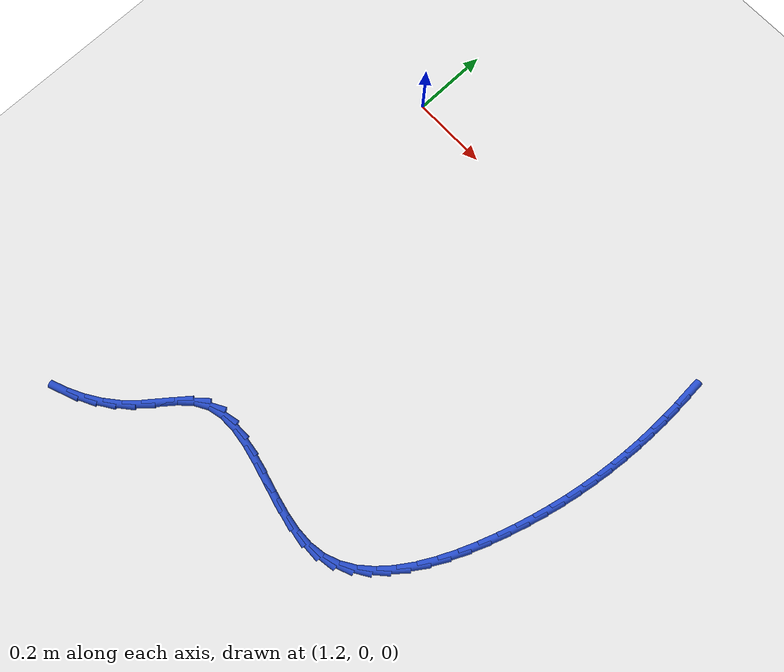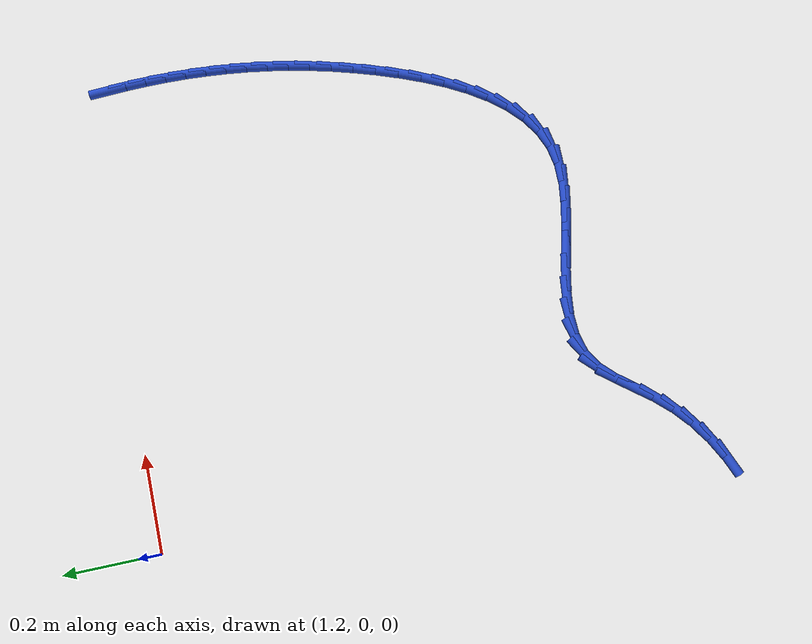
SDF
<sdf version="1.6">
 <world name="default">
  <model name="ground_plane">
   <static>1</static>
   <link name="link">
    <collision name="collision">
     <geometry><plane><normal>0 0 1</normal><size>100 100</size></plane></geometry>
     <surface><friction><ode><mu>100</mu><mu2>50</mu2></ode></friction></surface>
    </collision>
    <visual name="visual">
     <cast_shadows>0</cast_shadows>
     <geometry><plane><normal>0 0 1</normal><size>100 100</size></plane></geometry>
     <material>
      <script><uri>file://media/materials/scripts/gazebo.material</uri><name>Gazebo/WhiteGlow</name></script>
     </material>
    </visual>
   </link>
  </model>
  <model name="line">
   <link name="link_79">
    <pose>2.1831390095895657 -0.05542931454742334 0.01 0 1.57 -1.522108457162398</pose>
    <collision name="collision">
     <geometry><cylinder><radius>0.01</radius><length>0.08</length></cylinder></geometry>
    </collision>
    <visual name="visual">
     <material>
      <script><name>Gazebo/Blue</name><uri>file://media/materials/scripts/gazebo.material</uri></script>
     </material>
     <geometry><cylinder><radius>0.01</radius><length>0.08</length></cylinder></geometry>
    </visual>
   </link>
   <link name="link_80">
    <pose>2.185245318811194 -0.09865660366529191 0.01 0 1.57 -1.548702317414568</pose>
    <collision name="collision">
     <geometry><cylinder><radius>0.01</radius><length>0.08</length></cylinder></geometry>
    </collision>
    <visual name="visual">
     <material>
      <script><name>Gazebo/Blue</name><uri>file://media/materials/scripts/gazebo.material</uri></script>
     </material>
     <geometry><cylinder><radius>0.01</radius><length>0.08</length></cylinder></geometry>
    </visual>
   </link>
   <link name="link_81">
    <pose>2.1862041685043865 -0.14204816978187895 0.01 0 1.57 1.5650556510038254</pose>
    <collision name="collision">
     <geometry><cylinder><radius>0.01</radius><length>0.08</length></cylinder></geometry>
    </collision>
    <visual name="visual">
     <material>
      <script><name>Gazebo/Blue</name><uri>file://media/materials/scripts/gazebo.material</uri></script>
     </material>
     <geometry><cylinder><radius>0.01</radius><length>0.08</length></cylinder></geometry>
    </visual>
   </link>
   <link name="link_82">
    <pose>2.1859539735978686 -0.1856305226609679 0.01 0 1.57 1.5360879706356931</pose>
    <collision name="collision">
     <geometry><cylinder><radius>0.01</radius><length>0.08</length></cylinder></geometry>
    </collision>
    <visual name="visual">
     <material>
      <script><name>Gazebo/Blue</name><uri>file://media/materials/scripts/gazebo.material</uri></script>
     </material>
     <geometry><cylinder><radius>0.01</radius><length>0.08</length></cylinder></geometry>
    </visual>
   </link>
   <link name="link_83">
    <pose>2.1844331490203657 -0.22943017206633987 0.01 0 1.57 1.5061088793109934</pose>
    <collision name="collision">
     <geometry><cylinder><radius>0.01</radius><length>0.08</length></cylinder></geometry>
    </collision>
    <visual name="visual">
     <material>
      <script><name>Gazebo/Blue</name><uri>file://media/materials/scripts/gazebo.material</uri></script>
     </material>
     <geometry><cylinder><radius>0.01</radius><length>0.08</length></cylinder></geometry>
    </visual>
   </link>
   <link name="link_84">
    <pose>2.1815801097006022 -0.2734736277617782 0.01 0 1.57 1.475252470126976</pose>
    <collision name="collision">
     <geometry><cylinder><radius>0.01</radius><length>0.08</length></cylinder></geometry>
    </collision>
    <visual name="visual">
     <material>
      <script><name>Gazebo/Blue</name><uri>file://media/materials/scripts/gazebo.material</uri></script>
     </material>
     <geometry><cylinder><radius>0.01</radius><length>0.08</length></cylinder></geometry>
    </visual>
   </link>
   <link name="link_85">
    <pose>2.177333270567303 -0.3177873995110657 0.01 0 1.57 1.4436635382987018</pose>
    <collision name="collision">
     <geometry><cylinder><radius>0.01</radius><length>0.08</length></cylinder></geometry>
    </collision>
    <visual name="visual">
     <material>
      <script><name>Gazebo/Blue</name><uri>file://media/materials/scripts/gazebo.material</uri></script>
     </material>
     <geometry><cylinder><radius>0.01</radius><length>0.08</length></cylinder></geometry>
    </visual>
   </link>
   <link name="link_86">
    <pose>2.1716310465491953 -0.3623979970779849 0.01 0 1.57 1.4114952562025849</pose>
    <collision name="collision">
     <geometry><cylinder><radius>0.01</radius><length>0.08</length></cylinder></geometry>
    </collision>
    <visual name="visual">
     <material>
      <script><name>Gazebo/Blue</name><uri>file://media/materials/scripts/gazebo.material</uri></script>
     </material>
     <geometry><cylinder><radius>0.01</radius><length>0.08</length></cylinder></geometry>
    </visual>
   </link>
   <link name="link_87">
    <pose>2.1644118525750016 -0.4073319302263194 0.01 0 1.57 1.378906416513654</pose>
    <collision name="collision">
     <geometry><cylinder><radius>0.01</radius><length>0.08</length></cylinder></geometry>
    </collision>
    <visual name="visual">
     <material>
      <script><name>Gazebo/Blue</name><uri>file://media/materials/scripts/gazebo.material</uri></script>
     </material>
     <geometry><cylinder><radius>0.01</radius><length>0.08</length></cylinder></geometry>
    </visual>
   </link>
   <link name="link_88">
    <pose>2.155614103573448 -0.4526157087198502 0.01 0 1.57 1.346058368728842</pose>
    <collision name="collision">
     <geometry><cylinder><radius>0.01</radius><length>0.08</length></cylinder></geometry>
    </collision>
    <visual name="visual">
     <material>
      <script><name>Gazebo/Blue</name><uri>file://media/materials/scripts/gazebo.material</uri></script>
     </material>
     <geometry><cylinder><radius>0.01</radius><length>0.08</length></cylinder></geometry>
    </visual>
   </link>
   <link name="link_89">
    <pose>2.1451762144732602 -0.49827584232236066 0.01 0 1.57 1.3131118034793567</pose>
    <collision name="collision">
     <geometry><cylinder><radius>0.01</radius><length>0.08</length></cylinder></geometry>
    </collision>
    <visual name="visual">
     <material>
      <script><name>Gazebo/Blue</name><uri>file://media/materials/scripts/gazebo.material</uri></script>
     </material>
     <geometry><cylinder><radius>0.01</radius><length>0.08</length></cylinder></geometry>
    </visual>
   </link>
   <link name="link_90">
    <pose>2.1330366002031633 -0.544338840797634 0.01 0 1.57 1.280223553973466</pose>
    <collision name="collision">
     <geometry><cylinder><radius>0.01</radius><length>0.08</length></cylinder></geometry>
    </collision>
    <visual name="visual">
     <material>
      <script><name>Gazebo/Blue</name><uri>file://media/materials/scripts/gazebo.material</uri></script>
     </material>
     <geometry><cylinder><radius>0.01</radius><length>0.08</length></cylinder></geometry>
    </visual>
   </link>
   <link name="link_91">
    <pose>2.1191336756918817 -0.5908312139094518 0.01 0 1.57 1.2475370838448927</pose>
    <collision name="collision">
     <geometry><cylinder><radius>0.01</radius><length>0.08</length></cylinder></geometry>
    </collision>
    <visual name="visual">
     <material>
      <script><name>Gazebo/Blue</name><uri>file://media/materials/scripts/gazebo.material</uri></script>
     </material>
     <geometry><cylinder><radius>0.01</radius><length>0.08</length></cylinder></geometry>
    </visual>
   </link>
   <link name="link_92">
    <pose>2.1034057875598466 -0.6377786624070697 0.01 0 1.57 1.2129818637923762</pose>
    <collision name="collision">
     <geometry><cylinder><radius>0.01</radius><length>0.08</length></cylinder></geometry>
    </collision>
    <visual name="visual">
     <material>
      <script><name>Gazebo/Blue</name><uri>file://media/materials/scripts/gazebo.material</uri></script>
     </material>
     <geometry><cylinder><radius>0.01</radius><length>0.08</length></cylinder></geometry>
    </visual>
   </link>
   <link name="link_93">
    <pose>2.0857692928396125 -0.6849464516683501 0.01 0 1.57 1.170552706758883</pose>
    <collision name="collision">
     <geometry><cylinder><radius>0.01</radius><length>0.08</length></cylinder></geometry>
    </collision>
    <visual name="visual">
     <material>
      <script><name>Gazebo/Blue</name><uri>file://media/materials/scripts/gazebo.material</uri></script>
     </material>
     <geometry><cylinder><radius>0.01</radius><length>0.08</length></cylinder></geometry>
    </visual>
   </link>
   <link name="link_94">
    <pose>2.06608715555971 -0.7314674829308456 0.01 0 1.57 1.117600772588768</pose>
    <collision name="collision">
     <geometry><cylinder><radius>0.01</radius><length>0.08</length></cylinder></geometry>
    </collision>
    <visual name="visual">
     <material>
      <script><name>Gazebo/Blue</name><uri>file://media/materials/scripts/gazebo.material</uri></script>
     </material>
     <geometry><cylinder><radius>0.01</radius><length>0.08</length></cylinder></geometry>
    </visual>
   </link>
   <link name="link_95">
    <pose>2.044214392546623 -0.7763805341348176 0.01 0 1.57 1.0514386191112939</pose>
    <collision name="collision">
     <geometry><cylinder><radius>0.01</radius><length>0.08</length></cylinder></geometry>
    </collision>
    <visual name="visual">
     <material>
      <script><name>Gazebo/Blue</name><uri>file://media/materials/scripts/gazebo.material</uri></script>
     </material>
     <geometry><cylinder><radius>0.01</radius><length>0.08</length></cylinder></geometry>
    </visual>
   </link>
   <link name="link_96">
    <pose>2.0200060206268327 -0.8187243832205269 0.01 0 1.57 0.9684261569537993</pose>
    <collision name="collision">
     <geometry><cylinder><radius>0.01</radius><length>0.08</length></cylinder></geometry>
    </collision>
    <visual name="visual">
     <material>
      <script><name>Gazebo/Blue</name><uri>file://media/materials/scripts/gazebo.material</uri></script>
     </material>
     <geometry><cylinder><radius>0.01</radius><length>0.08</length></cylinder></geometry>
    </visual>
   </link>
   <link name="link_97">
    <pose>1.9933170566268237 -0.8575378081282331 0.01 0 1.57 0.8639216215624128</pose>
    <collision name="collision">
     <geometry><cylinder><radius>0.01</radius><length>0.08</length></cylinder></geometry>
    </collision>
    <visual name="visual">
     <material>
      <script><name>Gazebo/Blue</name><uri>file://media/materials/scripts/gazebo.material</uri></script>
     </material>
     <geometry><cylinder><radius>0.01</radius><length>0.08</length></cylinder></geometry>
    </visual>
   </link>
   <link name="link_98">
    <pose>1.964002517373077 -0.8918595867981972 0.01 0 1.57 0.7326828834025325</pose>
    <collision name="collision">
     <geometry><cylinder><radius>0.01</radius><length>0.08</length></cylinder></geometry>
    </collision>
    <visual name="visual">
     <material>
      <script><name>Gazebo/Blue</name><uri>file://media/materials/scripts/gazebo.material</uri></script>
     </material>
     <geometry><cylinder><radius>0.01</radius><length>0.08</length></cylinder></geometry>
    </visual>
   </link>
   <link name="link_99">
    <pose>1.9319174196920756 -0.9207284971706798 0.01 0 1.57 0.5704152561774094</pose>
    <collision name="collision">
     <geometry><cylinder><radius>0.01</radius><length>0.08</length></cylinder></geometry>
    </collision>
    <visual name="visual">
     <material>
      <script><name>Gazebo/Blue</name><uri>file://media/materials/scripts/gazebo.material</uri></script>
     </material>
     <geometry><cylinder><radius>0.01</radius><length>0.08</length></cylinder></geometry>
    </visual>
   </link>
   <link name="link_100">
    <pose>1.8969167804103035 -0.9431833171859423 0.01 0 1.57 0.37721883464383194</pose>
    <collision name="collision">
     <geometry><cylinder><radius>0.01</radius><length>0.08</length></cylinder></geometry>
    </collision>
    <visual name="visual">
     <material>
      <script><name>Gazebo/Blue</name><uri>file://media/materials/scripts/gazebo.material</uri></script>
     </material>
     <geometry><cylinder><radius>0.01</radius><length>0.08</length></cylinder></geometry>
    </visual>
   </link>
   <link name="link_101">
    <pose>1.8588556163542411 -0.9582628247842448 0.01 0 1.57 0.16350601883927826</pose>
    <collision name="collision">
     <geometry><cylinder><radius>0.01</radius><length>0.08</length></cylinder></geometry>
    </collision>
    <visual name="visual">
     <material>
      <script><name>Gazebo/Blue</name><uri>file://media/materials/scripts/gazebo.material</uri></script>
     </material>
     <geometry><cylinder><radius>0.01</radius><length>0.08</length></cylinder></geometry>
    </visual>
   </link>
   <link name="link_102">
    <pose>1.817608700162266 -0.9650676931404742 0.01 0 1.57 -0.021363014933664774</pose>
    <collision name="collision">
     <geometry><cylinder><radius>0.01</radius><length>0.08</length></cylinder></geometry>
    </collision>
    <visual name="visual">
     <material>
      <script><name>Gazebo/Blue</name><uri>file://media/materials/scripts/gazebo.material</uri></script>
     </material>
     <geometry><cylinder><radius>0.01</radius><length>0.08</length></cylinder></geometry>
    </visual>
   </link>
   <link name="link_103">
    <pose>1.7735062101038142 -0.9641253876330866 0.01 0 1.57 -0.1448132822679588</pose>
    <collision name="collision">
     <geometry><cylinder><radius>0.01</radius><length>0.08</length></cylinder></geometry>
    </collision>
    <visual name="visual">
     <material>
      <script><name>Gazebo/Blue</name><uri>file://media/materials/scripts/gazebo.material</uri></script>
     </material>
     <geometry><cylinder><radius>0.01</radius><length>0.08</length></cylinder></geometry>
    </visual>
   </link>
   <link name="link_104">
    <pose>1.72733429855814 -0.9573919468960054 0.01 0 1.57 -0.21796783411426693</pose>
    <collision name="collision">
     <geometry><cylinder><radius>0.01</radius><length>0.08</length></cylinder></geometry>
    </collision>
    <visual name="visual">
     <material>
      <script><name>Gazebo/Blue</name><uri>file://media/materials/scripts/gazebo.material</uri></script>
     </material>
     <geometry><cylinder><radius>0.01</radius><length>0.08</length></cylinder></geometry>
    </visual>
   </link>
   <link name="link_105">
    <pose>1.679898987412201 -0.946885661008335 0.01 0 1.57 -0.2506238269508344</pose>
    <collision name="collision">
     <geometry><cylinder><radius>0.01</radius><length>0.08</length></cylinder></geometry>
    </collision>
    <visual name="visual">
     <material>
      <script><name>Gazebo/Blue</name><uri>file://media/materials/scripts/gazebo.material</uri></script>
     </material>
     <geometry><cylinder><radius>0.01</radius><length>0.08</length></cylinder></geometry>
    </visual>
   </link>
   <link name="link_106">
    <pose>1.632006298552954 -0.9346248200491802 0.01 0 1.57 -0.24717667067063573</pose>
    <collision name="collision">
     <geometry><cylinder><radius>0.01</radius><length>0.08</length></cylinder></geometry>
    </collision>
    <visual name="visual">
     <material>
      <script><name>Gazebo/Blue</name><uri>file://media/materials/scripts/gazebo.material</uri></script>
     </material>
     <geometry><cylinder><radius>0.01</radius><length>0.08</length></cylinder></geometry>
    </visual>
   </link>
   <link name="link_107">
    <pose>1.5844622538673576 -0.9226277140976461 0.01 0 1.57 -0.20644111236674065</pose>
    <collision name="collision">
     <geometry><cylinder><radius>0.01</radius><length>0.08</length></cylinder></geometry>
    </collision>
    <visual name="visual">
     <material>
      <script><name>Gazebo/Blue</name><uri>file://media/materials/scripts/gazebo.material</uri></script>
     </material>
     <geometry><cylinder><radius>0.01</radius><length>0.08</length></cylinder></geometry>
    </visual>
   </link>
   <link name="link_108">
    <pose>1.5380728752423678 -0.9129126332328367 0.01 0 1.57 -0.12127731919907314</pose>
    <collision name="collision">
     <geometry><cylinder><radius>0.01</radius><length>0.08</length></cylinder></geometry>
    </collision>
    <visual name="visual">
     <material>
      <script><name>Gazebo/Blue</name><uri>file://media/materials/scripts/gazebo.material</uri></script>
     </material>
     <geometry><cylinder><radius>0.01</radius><length>0.08</length></cylinder></geometry>
    </visual>
   </link>
   <link name="link_109">
    <pose>1.4936441845649422 -0.9074978675338569 0.01 0 1.57 0.021691186275282555</pose>
    <collision name="collision">
     <geometry><cylinder><radius>0.01</radius><length>0.08</length></cylinder></geometry>
    </collision>
    <visual name="visual">
     <material>
      <script><name>Gazebo/Blue</name><uri>file://media/materials/scripts/gazebo.material</uri></script>
     </material>
     <geometry><cylinder><radius>0.01</radius><length>0.08</length></cylinder></geometry>
    </visual>
   </link>
   <link name="link_110">
    <pose>1.4519822037220376 -0.9084017070798113 0.01 0 1.57 0.2380089402579176</pose>
    <collision name="collision">
     <geometry><cylinder><radius>0.01</radius><length>0.08</length></cylinder></geometry>
    </collision>
    <visual name="visual">
     <material>
      <script><name>Gazebo/Blue</name><uri>file://media/materials/scripts/gazebo.material</uri></script>
     </material>
     <geometry><cylinder><radius>0.01</radius><length>0.08</length></cylinder></geometry>
    </visual>
   </link>
   <link name="link_111">
    <pose>1.4138929546006105 -0.9176424419498046 0.01 0 1.57 0.5253308922557078</pose>
    <collision name="collision">
     <geometry><cylinder><radius>0.01</radius><length>0.08</length></cylinder></geometry>
    </collision>
    <visual name="visual">
     <material>
      <script><name>Gazebo/Blue</name><uri>file://media/materials/scripts/gazebo.material</uri></script>
     </material>
     <geometry><cylinder><radius>0.01</radius><length>0.08</length></cylinder></geometry>
    </visual>
   </link>
   <link name="link_112">
    <pose>1.38016074640839 -0.9371957236527205 0.01 0 1.57 0.7788881776675004</pose>
    <collision name="collision">
     <geometry><cylinder><radius>0.01</radius><length>0.08</length></cylinder></geometry>
    </collision>
    <visual name="visual">
     <material>
      <script><name>Gazebo/Blue</name><uri>file://media/materials/scripts/gazebo.material</uri></script>
     </material>
     <geometry><cylinder><radius>0.01</radius><length>0.08</length></cylinder></geometry>
    </visual>
   </link>
   <link name="link_113">
    <pose>1.3503429540786411 -0.9666277947679817 0.01 0 1.57 0.8956259821606104</pose>
    <collision name="collision">
     <geometry><cylinder><radius>0.01</radius><length>0.08</length></cylinder></geometry>
    </collision>
    <visual name="visual">
     <material>
      <script><name>Gazebo/Blue</name><uri>file://media/materials/scripts/gazebo.material</uri></script>
     </material>
     <geometry><cylinder><radius>0.01</radius><length>0.08</length></cylinder></geometry>
    </visual>
   </link>
   <link name="link_114">
    <pose>1.3221375687163124 -1.0018535075010566 0.01 0 1.57 0.9002916312112865</pose>
    <collision name="collision">
     <geometry><cylinder><radius>0.01</radius><length>0.08</length></cylinder></geometry>
    </collision>
    <visual name="visual">
     <material>
      <script><name>Gazebo/Blue</name><uri>file://media/materials/scripts/gazebo.material</uri></script>
     </material>
     <geometry><cylinder><radius>0.01</radius><length>0.08</length></cylinder></geometry>
    </visual>
   </link>
   <link name="link_115">
    <pose>1.2930874853845338 -1.0384831420881924 0.01 0 1.57 0.811346382377945</pose>
    <collision name="collision">
     <geometry><cylinder><radius>0.01</radius><length>0.08</length></cylinder></geometry>
    </collision>
    <visual name="visual">
     <material>
      <script><name>Gazebo/Blue</name><uri>file://media/materials/scripts/gazebo.material</uri></script>
     </material>
     <geometry><cylinder><radius>0.01</radius><length>0.08</length></cylinder></geometry>
    </visual>
   </link>
   <link name="link_116">
    <pose>1.2609046691018664 -1.0723810196244044 0.01 0 1.57 0.690953552368493</pose>
    <collision name="collision">
     <geometry><cylinder><radius>0.01</radius><length>0.08</length></cylinder></geometry>
    </collision>
    <visual name="visual">
     <material>
      <script><name>Gazebo/Blue</name><uri>file://media/materials/scripts/gazebo.material</uri></script>
     </material>
     <geometry><cylinder><radius>0.01</radius><length>0.08</length></cylinder></geometry>
    </visual>
   </link>
   <link name="link_117">
    <pose>1.2250462880736326 -1.1020337657718373 0.01 0 1.57 0.5774613757782023</pose>
    <collision name="collision">
     <geometry><cylinder><radius>0.01</radius><length>0.08</length></cylinder></geometry>
    </collision>
    <visual name="visual">
     <material>
      <script><name>Gazebo/Blue</name><uri>file://media/materials/scripts/gazebo.material</uri></script>
     </material>
     <geometry><cylinder><radius>0.01</radius><length>0.08</length></cylinder></geometry>
    </visual>
   </link>
   <link name="link_118">
    <pose>1.1859989912074322 -1.1274748816326103 0.01 0 1.57 0.47156766596044136</pose>
    <collision name="collision">
     <geometry><cylinder><radius>0.01</radius><length>0.08</length></cylinder></geometry>
    </collision>
    <visual name="visual">
     <material>
      <script><name>Gazebo/Blue</name><uri>file://media/materials/scripts/gazebo.material</uri></script>
     </material>
     <geometry><cylinder><radius>0.01</radius><length>0.08</length></cylinder></geometry>
    </visual>
   </link>
   <link name="link_119">
    <pose>1.144262729586636 -1.1487578558704838 0.01 0 1.57 0.3727936357082693</pose>
    <collision name="collision">
     <geometry><cylinder><radius>0.01</radius><length>0.08</length></cylinder></geometry>
    </collision>
    <visual name="visual">
     <material>
      <script><name>Gazebo/Blue</name><uri>file://media/materials/scripts/gazebo.material</uri></script>
     </material>
     <geometry><cylinder><radius>0.01</radius><length>0.08</length></cylinder></geometry>
    </visual>
   </link>
  </model>
 </world>
</sdf>
